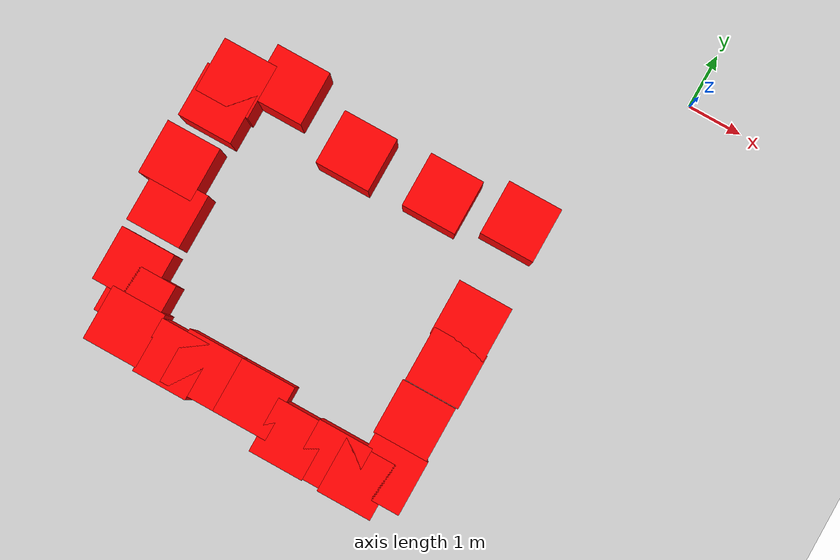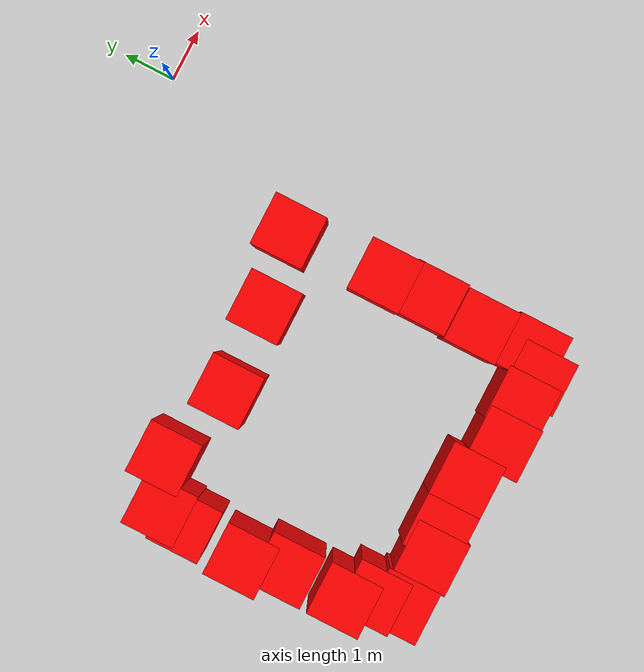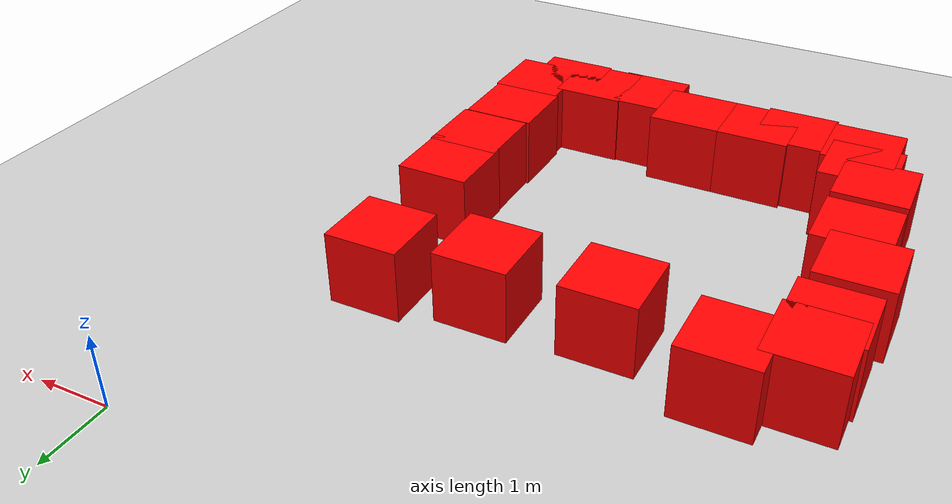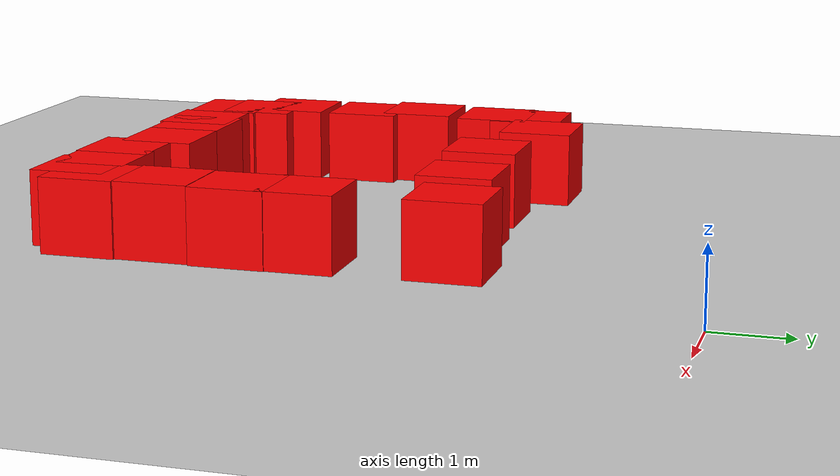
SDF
<sdf version="1.7">
 <world name="default">
  <model name="ground_plane">
   <static>1</static>
   <link name="link">
    <collision name="collision">
     <geometry><plane><normal>0 0 1</normal><size>100 100</size></plane></geometry>
     <surface><friction><ode><mu>100</mu><mu2>50</mu2></ode></friction></surface>
    </collision>
    <visual name="visual">
     <cast_shadows>0</cast_shadows>
     <geometry><plane><normal>0 0 1</normal><size>100 100</size></plane></geometry>
     <material>
      <script><uri>file://media/materials/scripts/gazebo.material</uri><name>Gazebo/Grey</name></script>
     </material>
    </visual>
   </link>
  </model>
  <model name="unit_box_clone_clone_5">
   <link name="link">
    <inertial>
     <mass>1</mass>
     <inertia>
      <ixx>0.166667</ixx>
      <ixy>0</ixy>
      <ixz>0</ixz>
      <iyy>0.166667</iyy>
      <iyz>0</iyz>
      <izz>0.166667</izz>
     </inertia>
    </inertial>
    <visual name="visual">
     <geometry><box><size>1 1 1</size></box></geometry>
     <material>
      <script><name>Gazebo/Grey</name><uri>file://media/materials/scripts/gazebo.material</uri></script>
      <shader type="pixel"><normal_map>__default__</normal_map></shader>
      <ambient>1 0 0 0</ambient>
      <diffuse>0.7 0.7 0.7 1</diffuse>
      <specular>0.01 0.01 0.01 1</specular>
      <emissive>0 0 0 1</emissive>
     </material>
    </visual>
    <collision name="collision">
     <geometry><box><size>1 1 1</size></box></geometry>
     <surface>
      <friction>
       <ode><mu>1</mu><mu2>1</mu2><fdir1>0 0 0</fdir1><slip1>0</slip1><slip2>0</slip2></ode>
       <torsional>
        <coefficient>1</coefficient>
        <patch_radius>0</patch_radius>
        <surface_radius>0</surface_radius>
        <use_patch_radius>1</use_patch_radius>
        <ode><slip>0</slip></ode>
       </torsional>
      </friction>
      <bounce><restitution_coefficient>0</restitution_coefficient><threshold>1e+06</threshold></bounce>
      <contact>
       <collide_without_contact>0</collide_without_contact>
       <collide_without_contact_bitmask>1</collide_without_contact_bitmask>
       <collide_bitmask>1</collide_bitmask>
       <ode>
        <soft_cfm>0</soft_cfm>
        <soft_erp>0.2</soft_erp>
        <kp>1e+13</kp>
        <kd>1</kd>
        <max_vel>0.01</max_vel>
        <min_depth>0</min_depth>
       </ode>
       <bullet>
        <split_impulse>1</split_impulse>
        <split_impulse_penetration_threshold>-0.01</split_impulse_penetration_threshold>
        <soft_cfm>0</soft_cfm>
        <soft_erp>0.2</soft_erp>
        <kp>1e+13</kp>
        <kd>1</kd>
       </bullet>
      </contact>
     </surface>
    </collision>
   </link>
   <static>0</static>
   <pose>-6.06718 -3.15279 0.5 0 -0 0</pose>
  </model>
  <model name="unit_box_clone_clone_6">
   <link name="link">
    <inertial>
     <mass>1</mass>
     <inertia>
      <ixx>0.166667</ixx>
      <ixy>0</ixy>
      <ixz>0</ixz>
      <iyy>0.166667</iyy>
      <iyz>0</iyz>
      <izz>0.166667</izz>
     </inertia>
    </inertial>
    <visual name="visual">
     <geometry><box><size>1 1 1</size></box></geometry>
     <material>
      <script><name>Gazebo/Grey</name><uri>file://media/materials/scripts/gazebo.material</uri></script>
      <shader type="pixel"><normal_map>__default__</normal_map></shader>
      <ambient>1 0 0 0</ambient>
      <diffuse>0.7 0.7 0.7 1</diffuse>
      <specular>0.01 0.01 0.01 1</specular>
      <emissive>0 0 0 1</emissive>
     </material>
    </visual>
    <collision name="collision">
     <geometry><box><size>1 1 1</size></box></geometry>
     <surface>
      <friction>
       <ode><mu>1</mu><mu2>1</mu2><fdir1>0 0 0</fdir1><slip1>0</slip1><slip2>0</slip2></ode>
       <torsional>
        <coefficient>1</coefficient>
        <patch_radius>0</patch_radius>
        <surface_radius>0</surface_radius>
        <use_patch_radius>1</use_patch_radius>
        <ode><slip>0</slip></ode>
       </torsional>
      </friction>
      <bounce><restitution_coefficient>0</restitution_coefficient><threshold>1e+06</threshold></bounce>
      <contact>
       <collide_without_contact>0</collide_without_contact>
       <collide_without_contact_bitmask>1</collide_without_contact_bitmask>
       <collide_bitmask>1</collide_bitmask>
       <ode>
        <soft_cfm>0</soft_cfm>
        <soft_erp>0.2</soft_erp>
        <kp>1e+13</kp>
        <kd>1</kd>
        <max_vel>0.01</max_vel>
        <min_depth>0</min_depth>
       </ode>
       <bullet>
        <split_impulse>1</split_impulse>
        <split_impulse_penetration_threshold>-0.01</split_impulse_penetration_threshold>
        <soft_cfm>0</soft_cfm>
        <soft_erp>0.2</soft_erp>
        <kp>1e+13</kp>
        <kd>1</kd>
       </bullet>
      </contact>
     </surface>
    </collision>
   </link>
   <static>0</static>
   <pose>-1.57543 -3.27153 0.5 0 -0 0</pose>
  </model>
  <model name="unit_box_clone_clone_11">
   <link name="link">
    <inertial>
     <mass>1</mass>
     <inertia>
      <ixx>0.166667</ixx>
      <ixy>0</ixy>
      <ixz>0</ixz>
      <iyy>0.166667</iyy>
      <iyz>0</iyz>
      <izz>0.166667</izz>
     </inertia>
    </inertial>
    <visual name="visual">
     <geometry><box><size>1 1 1</size></box></geometry>
     <material>
      <script><name>Gazebo/Grey</name><uri>file://media/materials/scripts/gazebo.material</uri></script>
      <shader type="pixel"><normal_map>__default__</normal_map></shader>
      <ambient>1 0 0 0</ambient>
      <diffuse>0.7 0.7 0.7 1</diffuse>
      <specular>0.01 0.01 0.01 1</specular>
      <emissive>0 0 0 1</emissive>
     </material>
    </visual>
    <collision name="collision">
     <geometry><box><size>1 1 1</size></box></geometry>
     <surface>
      <friction>
       <ode><mu>1</mu><mu2>1</mu2><fdir1>0 0 0</fdir1><slip1>0</slip1><slip2>0</slip2></ode>
       <torsional>
        <coefficient>1</coefficient>
        <patch_radius>0</patch_radius>
        <surface_radius>0</surface_radius>
        <use_patch_radius>1</use_patch_radius>
        <ode><slip>0</slip></ode>
       </torsional>
      </friction>
      <bounce><restitution_coefficient>0</restitution_coefficient><threshold>1e+06</threshold></bounce>
      <contact>
       <collide_without_contact>0</collide_without_contact>
       <collide_without_contact_bitmask>1</collide_without_contact_bitmask>
       <collide_bitmask>1</collide_bitmask>
       <ode>
        <soft_cfm>0</soft_cfm>
        <soft_erp>0.2</soft_erp>
        <kp>1e+13</kp>
        <kd>1</kd>
        <max_vel>0.01</max_vel>
        <min_depth>0</min_depth>
       </ode>
       <bullet>
        <split_impulse>1</split_impulse>
        <split_impulse_penetration_threshold>-0.01</split_impulse_penetration_threshold>
        <soft_cfm>0</soft_cfm>
        <soft_erp>0.2</soft_erp>
        <kp>1e+13</kp>
        <kd>1</kd>
       </bullet>
      </contact>
     </surface>
    </collision>
   </link>
   <static>0</static>
   <pose>-1.49355 -5.11821 0.5 0 -0 0</pose>
  </model>
  <model name="unit_box_clone_clone_12">
   <link name="link">
    <inertial>
     <mass>1</mass>
     <inertia>
      <ixx>0.166667</ixx>
      <ixy>0</ixy>
      <ixz>0</ixz>
      <iyy>0.166667</iyy>
      <iyz>0</iyz>
      <izz>0.166667</izz>
     </inertia>
    </inertial>
    <visual name="visual">
     <geometry><box><size>1 1 1</size></box></geometry>
     <material>
      <script><name>Gazebo/Grey</name><uri>file://media/materials/scripts/gazebo.material</uri></script>
      <shader type="pixel"><normal_map>__default__</normal_map></shader>
      <ambient>1 0 0 0</ambient>
      <diffuse>0.7 0.7 0.7 1</diffuse>
      <specular>0.01 0.01 0.01 1</specular>
      <emissive>0 0 0 1</emissive>
     </material>
    </visual>
    <collision name="collision">
     <geometry><box><size>1 1 1</size></box></geometry>
     <surface>
      <friction>
       <ode><mu>1</mu><mu2>1</mu2><fdir1>0 0 0</fdir1><slip1>0</slip1><slip2>0</slip2></ode>
       <torsional>
        <coefficient>1</coefficient>
        <patch_radius>0</patch_radius>
        <surface_radius>0</surface_radius>
        <use_patch_radius>1</use_patch_radius>
        <ode><slip>0</slip></ode>
       </torsional>
      </friction>
      <bounce><restitution_coefficient>0</restitution_coefficient><threshold>1e+06</threshold></bounce>
      <contact>
       <collide_without_contact>0</collide_without_contact>
       <collide_without_contact_bitmask>1</collide_without_contact_bitmask>
       <collide_bitmask>1</collide_bitmask>
       <ode>
        <soft_cfm>0</soft_cfm>
        <soft_erp>0.2</soft_erp>
        <kp>1e+13</kp>
        <kd>1</kd>
        <max_vel>0.01</max_vel>
        <min_depth>0</min_depth>
       </ode>
       <bullet>
        <split_impulse>1</split_impulse>
        <split_impulse_penetration_threshold>-0.01</split_impulse_penetration_threshold>
        <soft_cfm>0</soft_cfm>
        <soft_erp>0.2</soft_erp>
        <kp>1e+13</kp>
        <kd>1</kd>
       </bullet>
      </contact>
     </surface>
    </collision>
   </link>
   <static>0</static>
   <pose>-1.51313 -7.01038 0.5 0 -0 0</pose>
  </model>
  <model name="unit_box_clone_clone_13">
   <link name="link">
    <inertial>
     <mass>1</mass>
     <inertia>
      <ixx>0.166667</ixx>
      <ixy>0</ixy>
      <ixz>0</ixz>
      <iyy>0.166667</iyy>
      <iyz>0</iyz>
      <izz>0.166667</izz>
     </inertia>
    </inertial>
    <visual name="visual">
     <geometry><box><size>1 1 1</size></box></geometry>
     <material>
      <script><name>Gazebo/Grey</name><uri>file://media/materials/scripts/gazebo.material</uri></script>
      <shader type="pixel"><normal_map>__default__</normal_map></shader>
      <ambient>1 0 0 0</ambient>
      <diffuse>0.7 0.7 0.7 1</diffuse>
      <specular>0.01 0.01 0.01 1</specular>
      <emissive>0 0 0 1</emissive>
     </material>
    </visual>
    <collision name="collision">
     <geometry><box><size>1 1 1</size></box></geometry>
     <surface>
      <friction>
       <ode><mu>1</mu><mu2>1</mu2><fdir1>0 0 0</fdir1><slip1>0</slip1><slip2>0</slip2></ode>
       <torsional>
        <coefficient>1</coefficient>
        <patch_radius>0</patch_radius>
        <surface_radius>0</surface_radius>
        <use_patch_radius>1</use_patch_radius>
        <ode><slip>0</slip></ode>
       </torsional>
      </friction>
      <bounce><restitution_coefficient>0</restitution_coefficient><threshold>1e+06</threshold></bounce>
      <contact>
       <collide_without_contact>0</collide_without_contact>
       <collide_without_contact_bitmask>1</collide_without_contact_bitmask>
       <collide_bitmask>1</collide_bitmask>
       <ode>
        <soft_cfm>0</soft_cfm>
        <soft_erp>0.2</soft_erp>
        <kp>1e+13</kp>
        <kd>1</kd>
        <max_vel>0.01</max_vel>
        <min_depth>0</min_depth>
       </ode>
       <bullet>
        <split_impulse>1</split_impulse>
        <split_impulse_penetration_threshold>-0.01</split_impulse_penetration_threshold>
        <soft_cfm>0</soft_cfm>
        <soft_erp>0.2</soft_erp>
        <kp>1e+13</kp>
        <kd>1</kd>
       </bullet>
      </contact>
     </surface>
    </collision>
   </link>
   <static>0</static>
   <pose>-2.93788 -3.49827 0.5 0 -0 0</pose>
  </model>
  <model name="unit_box_clone_clone_14">
   <link name="link">
    <inertial>
     <mass>1</mass>
     <inertia>
      <ixx>0.166667</ixx>
      <ixy>0</ixy>
      <ixz>0</ixz>
      <iyy>0.166667</iyy>
      <iyz>0</iyz>
      <izz>0.166667</izz>
     </inertia>
    </inertial>
    <visual name="visual">
     <geometry><box><size>1 1 1</size></box></geometry>
     <material>
      <script><name>Gazebo/Grey</name><uri>file://media/materials/scripts/gazebo.material</uri></script>
      <shader type="pixel"><normal_map>__default__</normal_map></shader>
      <ambient>1 0 0 0</ambient>
      <diffuse>0.7 0.7 0.7 1</diffuse>
      <specular>0.01 0.01 0.01 1</specular>
      <emissive>0 0 0 1</emissive>
     </material>
    </visual>
    <collision name="collision">
     <geometry><box><size>1 1 1</size></box></geometry>
     <surface>
      <friction>
       <ode><mu>1</mu><mu2>1</mu2><fdir1>0 0 0</fdir1><slip1>0</slip1><slip2>0</slip2></ode>
       <torsional>
        <coefficient>1</coefficient>
        <patch_radius>0</patch_radius>
        <surface_radius>0</surface_radius>
        <use_patch_radius>1</use_patch_radius>
        <ode><slip>0</slip></ode>
       </torsional>
      </friction>
      <bounce><restitution_coefficient>0</restitution_coefficient><threshold>1e+06</threshold></bounce>
      <contact>
       <collide_without_contact>0</collide_without_contact>
       <collide_without_contact_bitmask>1</collide_without_contact_bitmask>
       <collide_bitmask>1</collide_bitmask>
       <ode>
        <soft_cfm>0</soft_cfm>
        <soft_erp>0.2</soft_erp>
        <kp>1e+13</kp>
        <kd>1</kd>
        <max_vel>0.01</max_vel>
        <min_depth>0</min_depth>
       </ode>
       <bullet>
        <split_impulse>1</split_impulse>
        <split_impulse_penetration_threshold>-0.01</split_impulse_penetration_threshold>
        <soft_cfm>0</soft_cfm>
        <soft_erp>0.2</soft_erp>
        <kp>1e+13</kp>
        <kd>1</kd>
       </bullet>
      </contact>
     </surface>
    </collision>
   </link>
   <static>0</static>
   <pose>-4.54136 -3.57601 0.5 0 -0 0</pose>
  </model>
  <model name="unit_box_clone_clone_66">
   <link name="link">
    <inertial>
     <mass>1</mass>
     <inertia>
      <ixx>0.166667</ixx>
      <ixy>0</ixy>
      <ixz>0</ixz>
      <iyy>0.166667</iyy>
      <iyz>0</iyz>
      <izz>0.166667</izz>
     </inertia>
    </inertial>
    <visual name="visual">
     <geometry><box><size>1 1 1</size></box></geometry>
     <material>
      <script><name>Gazebo/Grey</name><uri>file://media/materials/scripts/gazebo.material</uri></script>
      <shader type="pixel"><normal_map>__default__</normal_map></shader>
      <ambient>1 0 0 0</ambient>
      <diffuse>0.7 0.7 0.7 1</diffuse>
      <specular>0.01 0.01 0.01 1</specular>
      <emissive>0 0 0 1</emissive>
     </material>
    </visual>
    <collision name="collision">
     <geometry><box><size>1 1 1</size></box></geometry>
     <surface>
      <friction>
       <ode><mu>1</mu><mu2>1</mu2><fdir1>0 0 0</fdir1><slip1>0</slip1><slip2>0</slip2></ode>
       <torsional>
        <coefficient>1</coefficient>
        <patch_radius>0</patch_radius>
        <surface_radius>0</surface_radius>
        <use_patch_radius>1</use_patch_radius>
        <ode><slip>0</slip></ode>
       </torsional>
      </friction>
      <bounce><restitution_coefficient>0</restitution_coefficient><threshold>1e+06</threshold></bounce>
      <contact>
       <collide_without_contact>0</collide_without_contact>
       <collide_without_contact_bitmask>1</collide_without_contact_bitmask>
       <collide_bitmask>1</collide_bitmask>
       <ode>
        <soft_cfm>0</soft_cfm>
        <soft_erp>0.2</soft_erp>
        <kp>1e+13</kp>
        <kd>1</kd>
        <max_vel>0.01</max_vel>
        <min_depth>0</min_depth>
       </ode>
       <bullet>
        <split_impulse>1</split_impulse>
        <split_impulse_penetration_threshold>-0.01</split_impulse_penetration_threshold>
        <soft_cfm>0</soft_cfm>
        <soft_erp>0.2</soft_erp>
        <kp>1e+13</kp>
        <kd>1</kd>
       </bullet>
      </contact>
     </surface>
    </collision>
   </link>
   <static>0</static>
   <pose>-6.89269 -3.49292 0.5 0 -0 0</pose>
  </model>
  <model name="unit_box_clone_clone_67">
   <link name="link">
    <inertial>
     <mass>1</mass>
     <inertia>
      <ixx>0.166667</ixx>
      <ixy>0</ixy>
      <ixz>0</ixz>
      <iyy>0.166667</iyy>
      <iyz>0</iyz>
      <izz>0.166667</izz>
     </inertia>
    </inertial>
    <visual name="visual">
     <geometry><box><size>1 1 1</size></box></geometry>
     <material>
      <script><name>Gazebo/Grey</name><uri>file://media/materials/scripts/gazebo.material</uri></script>
      <shader type="pixel"><normal_map>__default__</normal_map></shader>
      <ambient>1 0 0 0</ambient>
      <diffuse>0.7 0.7 0.7 1</diffuse>
      <specular>0.01 0.01 0.01 1</specular>
      <emissive>0 0 0 1</emissive>
     </material>
    </visual>
    <collision name="collision">
     <geometry><box><size>1 1 1</size></box></geometry>
     <surface>
      <friction>
       <ode><mu>1</mu><mu2>1</mu2><fdir1>0 0 0</fdir1><slip1>0</slip1><slip2>0</slip2></ode>
       <torsional>
        <coefficient>1</coefficient>
        <patch_radius>0</patch_radius>
        <surface_radius>0</surface_radius>
        <use_patch_radius>1</use_patch_radius>
        <ode><slip>0</slip></ode>
       </torsional>
      </friction>
      <bounce><restitution_coefficient>0</restitution_coefficient><threshold>1e+06</threshold></bounce>
      <contact>
       <collide_without_contact>0</collide_without_contact>
       <collide_without_contact_bitmask>1</collide_without_contact_bitmask>
       <collide_bitmask>1</collide_bitmask>
       <ode>
        <soft_cfm>0</soft_cfm>
        <soft_erp>0.2</soft_erp>
        <kp>1e+13</kp>
        <kd>1</kd>
        <max_vel>0.01</max_vel>
        <min_depth>0</min_depth>
       </ode>
       <bullet>
        <split_impulse>1</split_impulse>
        <split_impulse_penetration_threshold>-0.01</split_impulse_penetration_threshold>
        <soft_cfm>0</soft_cfm>
        <soft_erp>0.2</soft_erp>
        <kp>1e+13</kp>
        <kd>1</kd>
       </bullet>
      </contact>
     </surface>
    </collision>
   </link>
   <static>0</static>
   <pose>-6.93666 -3.99629 0.5 0 -0 0</pose>
  </model>
  <model name="unit_box_clone_clone_68">
   <link name="link">
    <inertial>
     <mass>1</mass>
     <inertia>
      <ixx>0.166667</ixx>
      <ixy>0</ixy>
      <ixz>0</ixz>
      <iyy>0.166667</iyy>
      <iyz>0</iyz>
      <izz>0.166667</izz>
     </inertia>
    </inertial>
    <visual name="visual">
     <geometry><box><size>1 1 1</size></box></geometry>
     <material>
      <script><name>Gazebo/Grey</name><uri>file://media/materials/scripts/gazebo.material</uri></script>
      <shader type="pixel"><normal_map>__default__</normal_map></shader>
      <ambient>1 0 0 0</ambient>
      <diffuse>0.7 0.7 0.7 1</diffuse>
      <specular>0.01 0.01 0.01 1</specular>
      <emissive>0 0 0 1</emissive>
     </material>
    </visual>
    <collision name="collision">
     <geometry><box><size>1 1 1</size></box></geometry>
     <surface>
      <friction>
       <ode><mu>1</mu><mu2>1</mu2><fdir1>0 0 0</fdir1><slip1>0</slip1><slip2>0</slip2></ode>
       <torsional>
        <coefficient>1</coefficient>
        <patch_radius>0</patch_radius>
        <surface_radius>0</surface_radius>
        <use_patch_radius>1</use_patch_radius>
        <ode><slip>0</slip></ode>
       </torsional>
      </friction>
      <bounce><restitution_coefficient>0</restitution_coefficient><threshold>1e+06</threshold></bounce>
      <contact>
       <collide_without_contact>0</collide_without_contact>
       <collide_without_contact_bitmask>1</collide_without_contact_bitmask>
       <collide_bitmask>1</collide_bitmask>
       <ode>
        <soft_cfm>0</soft_cfm>
        <soft_erp>0.2</soft_erp>
        <kp>1e+13</kp>
        <kd>1</kd>
        <max_vel>0.01</max_vel>
        <min_depth>0</min_depth>
       </ode>
       <bullet>
        <split_impulse>1</split_impulse>
        <split_impulse_penetration_threshold>-0.01</split_impulse_penetration_threshold>
        <soft_cfm>0</soft_cfm>
        <soft_erp>0.2</soft_erp>
        <kp>1e+13</kp>
        <kd>1</kd>
       </bullet>
      </contact>
     </surface>
    </collision>
   </link>
   <static>0</static>
   <pose>-7.03759 -5.15761 0.5 0 -0 0</pose>
  </model>
  <model name="unit_box_clone_clone_69">
   <link name="link">
    <inertial>
     <mass>1</mass>
     <inertia>
      <ixx>0.166667</ixx>
      <ixy>0</ixy>
      <ixz>0</ixz>
      <iyy>0.166667</iyy>
      <iyz>0</iyz>
      <izz>0.166667</izz>
     </inertia>
    </inertial>
    <visual name="visual">
     <geometry><box><size>1 1 1</size></box></geometry>
     <material>
      <script><name>Gazebo/Grey</name><uri>file://media/materials/scripts/gazebo.material</uri></script>
      <shader type="pixel"><normal_map>__default__</normal_map></shader>
      <ambient>1 0 0 0</ambient>
      <diffuse>0.7 0.7 0.7 1</diffuse>
      <specular>0.01 0.01 0.01 1</specular>
      <emissive>0 0 0 1</emissive>
     </material>
    </visual>
    <collision name="collision">
     <geometry><box><size>1 1 1</size></box></geometry>
     <surface>
      <friction>
       <ode><mu>1</mu><mu2>1</mu2><fdir1>0 0 0</fdir1><slip1>0</slip1><slip2>0</slip2></ode>
       <torsional>
        <coefficient>1</coefficient>
        <patch_radius>0</patch_radius>
        <surface_radius>0</surface_radius>
        <use_patch_radius>1</use_patch_radius>
        <ode><slip>0</slip></ode>
       </torsional>
      </friction>
      <bounce><restitution_coefficient>0</restitution_coefficient><threshold>1e+06</threshold></bounce>
      <contact>
       <collide_without_contact>0</collide_without_contact>
       <collide_without_contact_bitmask>1</collide_without_contact_bitmask>
       <collide_bitmask>1</collide_bitmask>
       <ode>
        <soft_cfm>0</soft_cfm>
        <soft_erp>0.2</soft_erp>
        <kp>1e+13</kp>
        <kd>1</kd>
        <max_vel>0.01</max_vel>
        <min_depth>0</min_depth>
       </ode>
       <bullet>
        <split_impulse>1</split_impulse>
        <split_impulse_penetration_threshold>-0.01</split_impulse_penetration_threshold>
        <soft_cfm>0</soft_cfm>
        <soft_erp>0.2</soft_erp>
        <kp>1e+13</kp>
        <kd>1</kd>
       </bullet>
      </contact>
     </surface>
    </collision>
   </link>
   <static>0</static>
   <pose>-6.819 -5.9351 0.5 0 -0 0</pose>
  </model>
  <model name="unit_box_clone_clone_70">
   <link name="link">
    <inertial>
     <mass>1</mass>
     <inertia>
      <ixx>0.166667</ixx>
      <ixy>0</ixy>
      <ixz>0</ixz>
      <iyy>0.166667</iyy>
      <iyz>0</iyz>
      <izz>0.166667</izz>
     </inertia>
    </inertial>
    <visual name="visual">
     <geometry><box><size>1 1 1</size></box></geometry>
     <material>
      <script><name>Gazebo/Grey</name><uri>file://media/materials/scripts/gazebo.material</uri></script>
      <shader type="pixel"><normal_map>__default__</normal_map></shader>
      <ambient>1 0 0 0</ambient>
      <diffuse>0.7 0.7 0.7 1</diffuse>
      <specular>0.01 0.01 0.01 1</specular>
      <emissive>0 0 0 1</emissive>
     </material>
    </visual>
    <collision name="collision">
     <geometry><box><size>1 1 1</size></box></geometry>
     <surface>
      <friction>
       <ode><mu>1</mu><mu2>1</mu2><fdir1>0 0 0</fdir1><slip1>0</slip1><slip2>0</slip2></ode>
       <torsional>
        <coefficient>1</coefficient>
        <patch_radius>0</patch_radius>
        <surface_radius>0</surface_radius>
        <use_patch_radius>1</use_patch_radius>
        <ode><slip>0</slip></ode>
       </torsional>
      </friction>
      <bounce><restitution_coefficient>0</restitution_coefficient><threshold>1e+06</threshold></bounce>
      <contact>
       <collide_without_contact>0</collide_without_contact>
       <collide_without_contact_bitmask>1</collide_without_contact_bitmask>
       <collide_bitmask>1</collide_bitmask>
       <ode>
        <soft_cfm>0</soft_cfm>
        <soft_erp>0.2</soft_erp>
        <kp>1e+13</kp>
        <kd>1</kd>
        <max_vel>0.01</max_vel>
        <min_depth>0</min_depth>
       </ode>
       <bullet>
        <split_impulse>1</split_impulse>
        <split_impulse_penetration_threshold>-0.01</split_impulse_penetration_threshold>
        <soft_cfm>0</soft_cfm>
        <soft_erp>0.2</soft_erp>
        <kp>1e+13</kp>
        <kd>1</kd>
       </bullet>
      </contact>
     </surface>
    </collision>
   </link>
   <static>0</static>
   <pose>-6.82307 -7.06833 0.5 0 -0 0</pose>
  </model>
  <model name="unit_box_clone_clone_71">
   <link name="link">
    <inertial>
     <mass>1</mass>
     <inertia>
      <ixx>0.166667</ixx>
      <ixy>0</ixy>
      <ixz>0</ixz>
      <iyy>0.166667</iyy>
      <iyz>0</iyz>
      <izz>0.166667</izz>
     </inertia>
    </inertial>
    <visual name="visual">
     <geometry><box><size>1 1 1</size></box></geometry>
     <material>
      <script><name>Gazebo/Grey</name><uri>file://media/materials/scripts/gazebo.material</uri></script>
      <shader type="pixel"><normal_map>__default__</normal_map></shader>
      <ambient>1 0 0 0</ambient>
      <diffuse>0.7 0.7 0.7 1</diffuse>
      <specular>0.01 0.01 0.01 1</specular>
      <emissive>0 0 0 1</emissive>
     </material>
    </visual>
    <collision name="collision">
     <geometry><box><size>1 1 1</size></box></geometry>
     <surface>
      <friction>
       <ode><mu>1</mu><mu2>1</mu2><fdir1>0 0 0</fdir1><slip1>0</slip1><slip2>0</slip2></ode>
       <torsional>
        <coefficient>1</coefficient>
        <patch_radius>0</patch_radius>
        <surface_radius>0</surface_radius>
        <use_patch_radius>1</use_patch_radius>
        <ode><slip>0</slip></ode>
       </torsional>
      </friction>
      <bounce><restitution_coefficient>0</restitution_coefficient><threshold>1e+06</threshold></bounce>
      <contact>
       <collide_without_contact>0</collide_without_contact>
       <collide_without_contact_bitmask>1</collide_without_contact_bitmask>
       <collide_bitmask>1</collide_bitmask>
       <ode>
        <soft_cfm>0</soft_cfm>
        <soft_erp>0.2</soft_erp>
        <kp>1e+13</kp>
        <kd>1</kd>
        <max_vel>0.01</max_vel>
        <min_depth>0</min_depth>
       </ode>
       <bullet>
        <split_impulse>1</split_impulse>
        <split_impulse_penetration_threshold>-0.01</split_impulse_penetration_threshold>
        <soft_cfm>0</soft_cfm>
        <soft_erp>0.2</soft_erp>
        <kp>1e+13</kp>
        <kd>1</kd>
       </bullet>
      </contact>
     </surface>
    </collision>
   </link>
   <static>0</static>
   <pose>-6.54355 -7.50246 0.5 0 -0 0</pose>
  </model>
  <model name="unit_box_clone_clone_72">
   <link name="link">
    <inertial>
     <mass>1</mass>
     <inertia>
      <ixx>0.166667</ixx>
      <ixy>0</ixy>
      <ixz>0</ixz>
      <iyy>0.166667</iyy>
      <iyz>0</iyz>
      <izz>0.166667</izz>
     </inertia>
    </inertial>
    <visual name="visual">
     <geometry><box><size>1 1 1</size></box></geometry>
     <material>
      <script><name>Gazebo/Grey</name><uri>file://media/materials/scripts/gazebo.material</uri></script>
      <shader type="pixel"><normal_map>__default__</normal_map></shader>
      <ambient>1 0 0 0</ambient>
      <diffuse>0.7 0.7 0.7 1</diffuse>
      <specular>0.01 0.01 0.01 1</specular>
      <emissive>0 0 0 1</emissive>
     </material>
    </visual>
    <collision name="collision">
     <geometry><box><size>1 1 1</size></box></geometry>
     <surface>
      <friction>
       <ode><mu>1</mu><mu2>1</mu2><fdir1>0 0 0</fdir1><slip1>0</slip1><slip2>0</slip2></ode>
       <torsional>
        <coefficient>1</coefficient>
        <patch_radius>0</patch_radius>
        <surface_radius>0</surface_radius>
        <use_patch_radius>1</use_patch_radius>
        <ode><slip>0</slip></ode>
       </torsional>
      </friction>
      <bounce><restitution_coefficient>0</restitution_coefficient><threshold>1e+06</threshold></bounce>
      <contact>
       <collide_without_contact>0</collide_without_contact>
       <collide_without_contact_bitmask>1</collide_without_contact_bitmask>
       <collide_bitmask>1</collide_bitmask>
       <ode>
        <soft_cfm>0</soft_cfm>
        <soft_erp>0.2</soft_erp>
        <kp>1e+13</kp>
        <kd>1</kd>
        <max_vel>0.01</max_vel>
        <min_depth>0</min_depth>
       </ode>
       <bullet>
        <split_impulse>1</split_impulse>
        <split_impulse_penetration_threshold>-0.01</split_impulse_penetration_threshold>
        <soft_cfm>0</soft_cfm>
        <soft_erp>0.2</soft_erp>
        <kp>1e+13</kp>
        <kd>1</kd>
       </bullet>
      </contact>
     </surface>
    </collision>
   </link>
   <static>0</static>
   <pose>-6.4614 -8 0.5 0 -0 0</pose>
  </model>
  <model name="unit_box_clone_clone_73">
   <link name="link">
    <inertial>
     <mass>1</mass>
     <inertia>
      <ixx>0.166667</ixx>
      <ixy>0</ixy>
      <ixz>0</ixz>
      <iyy>0.166667</iyy>
      <iyz>0</iyz>
      <izz>0.166667</izz>
     </inertia>
    </inertial>
    <visual name="visual">
     <geometry><box><size>1 1 1</size></box></geometry>
     <material>
      <script><name>Gazebo/Grey</name><uri>file://media/materials/scripts/gazebo.material</uri></script>
      <shader type="pixel"><normal_map>__default__</normal_map></shader>
      <ambient>1 0 0 0</ambient>
      <diffuse>0.7 0.7 0.7 1</diffuse>
      <specular>0.01 0.01 0.01 1</specular>
      <emissive>0 0 0 1</emissive>
     </material>
    </visual>
    <collision name="collision">
     <geometry><box><size>1 1 1</size></box></geometry>
     <surface>
      <friction>
       <ode><mu>1</mu><mu2>1</mu2><fdir1>0 0 0</fdir1><slip1>0</slip1><slip2>0</slip2></ode>
       <torsional>
        <coefficient>1</coefficient>
        <patch_radius>0</patch_radius>
        <surface_radius>0</surface_radius>
        <use_patch_radius>1</use_patch_radius>
        <ode><slip>0</slip></ode>
       </torsional>
      </friction>
      <bounce><restitution_coefficient>0</restitution_coefficient><threshold>1e+06</threshold></bounce>
      <contact>
       <collide_without_contact>0</collide_without_contact>
       <collide_without_contact_bitmask>1</collide_without_contact_bitmask>
       <collide_bitmask>1</collide_bitmask>
       <ode>
        <soft_cfm>0</soft_cfm>
        <soft_erp>0.2</soft_erp>
        <kp>1e+13</kp>
        <kd>1</kd>
        <max_vel>0.01</max_vel>
        <min_depth>0</min_depth>
       </ode>
       <bullet>
        <split_impulse>1</split_impulse>
        <split_impulse_penetration_threshold>-0.01</split_impulse_penetration_threshold>
        <soft_cfm>0</soft_cfm>
        <soft_erp>0.2</soft_erp>
        <kp>1e+13</kp>
        <kd>1</kd>
       </bullet>
      </contact>
     </surface>
    </collision>
   </link>
   <static>0</static>
   <pose>-5.48283 -8.06879 0.5 0 -0 0</pose>
  </model>
  <model name="unit_box_clone_clone_74">
   <link name="link">
    <inertial>
     <mass>1</mass>
     <inertia>
      <ixx>0.166667</ixx>
      <ixy>0</ixy>
      <ixz>0</ixz>
      <iyy>0.166667</iyy>
      <iyz>0</iyz>
      <izz>0.166667</izz>
     </inertia>
    </inertial>
    <visual name="visual">
     <geometry><box><size>1 1 1</size></box></geometry>
     <material>
      <script><name>Gazebo/Grey</name><uri>file://media/materials/scripts/gazebo.material</uri></script>
      <shader type="pixel"><normal_map>__default__</normal_map></shader>
      <ambient>1 0 0 0</ambient>
      <diffuse>0.7 0.7 0.7 1</diffuse>
      <specular>0.01 0.01 0.01 1</specular>
      <emissive>0 0 0 1</emissive>
     </material>
    </visual>
    <collision name="collision">
     <geometry><box><size>1 1 1</size></box></geometry>
     <surface>
      <friction>
       <ode><mu>1</mu><mu2>1</mu2><fdir1>0 0 0</fdir1><slip1>0</slip1><slip2>0</slip2></ode>
       <torsional>
        <coefficient>1</coefficient>
        <patch_radius>0</patch_radius>
        <surface_radius>0</surface_radius>
        <use_patch_radius>1</use_patch_radius>
        <ode><slip>0</slip></ode>
       </torsional>
      </friction>
      <bounce><restitution_coefficient>0</restitution_coefficient><threshold>1e+06</threshold></bounce>
      <contact>
       <collide_without_contact>0</collide_without_contact>
       <collide_without_contact_bitmask>1</collide_without_contact_bitmask>
       <collide_bitmask>1</collide_bitmask>
       <ode>
        <soft_cfm>0</soft_cfm>
        <soft_erp>0.2</soft_erp>
        <kp>1e+13</kp>
        <kd>1</kd>
        <max_vel>0.01</max_vel>
        <min_depth>0</min_depth>
       </ode>
       <bullet>
        <split_impulse>1</split_impulse>
        <split_impulse_penetration_threshold>-0.01</split_impulse_penetration_threshold>
        <soft_cfm>0</soft_cfm>
        <soft_erp>0.2</soft_erp>
        <kp>1e+13</kp>
        <kd>1</kd>
       </bullet>
      </contact>
     </surface>
    </collision>
   </link>
   <static>0</static>
   <pose>-5 -8 0.5 0 -0 0</pose>
  </model>
  <model name="unit_box_clone_clone_75">
   <link name="link">
    <inertial>
     <mass>1</mass>
     <inertia>
      <ixx>0.166667</ixx>
      <ixy>0</ixy>
      <ixz>0</ixz>
      <iyy>0.166667</iyy>
      <iyz>0</iyz>
      <izz>0.166667</izz>
     </inertia>
    </inertial>
    <visual name="visual">
     <geometry><box><size>1 1 1</size></box></geometry>
     <material>
      <script><name>Gazebo/Grey</name><uri>file://media/materials/scripts/gazebo.material</uri></script>
      <shader type="pixel"><normal_map>__default__</normal_map></shader>
      <ambient>1 0 0 0</ambient>
      <diffuse>0.7 0.7 0.7 1</diffuse>
      <specular>0.01 0.01 0.01 1</specular>
      <emissive>0 0 0 1</emissive>
     </material>
    </visual>
    <collision name="collision">
     <geometry><box><size>1 1 1</size></box></geometry>
     <surface>
      <friction>
       <ode><mu>1</mu><mu2>1</mu2><fdir1>0 0 0</fdir1><slip1>0</slip1><slip2>0</slip2></ode>
       <torsional>
        <coefficient>1</coefficient>
        <patch_radius>0</patch_radius>
        <surface_radius>0</surface_radius>
        <use_patch_radius>1</use_patch_radius>
        <ode><slip>0</slip></ode>
       </torsional>
      </friction>
      <bounce><restitution_coefficient>0</restitution_coefficient><threshold>1e+06</threshold></bounce>
      <contact>
       <collide_without_contact>0</collide_without_contact>
       <collide_without_contact_bitmask>1</collide_without_contact_bitmask>
       <collide_bitmask>1</collide_bitmask>
       <ode>
        <soft_cfm>0</soft_cfm>
        <soft_erp>0.2</soft_erp>
        <kp>1e+13</kp>
        <kd>1</kd>
        <max_vel>0.01</max_vel>
        <min_depth>0</min_depth>
       </ode>
       <bullet>
        <split_impulse>1</split_impulse>
        <split_impulse_penetration_threshold>-0.01</split_impulse_penetration_threshold>
        <soft_cfm>0</soft_cfm>
        <soft_erp>0.2</soft_erp>
        <kp>1e+13</kp>
        <kd>1</kd>
       </bullet>
      </contact>
     </surface>
    </collision>
   </link>
   <static>0</static>
   <pose>-4 -8 0.5 0 -0 0</pose>
  </model>
  <model name="unit_box_clone_clone_76">
   <link name="link">
    <inertial>
     <mass>1</mass>
     <inertia>
      <ixx>0.166667</ixx>
      <ixy>0</ixy>
      <ixz>0</ixz>
      <iyy>0.166667</iyy>
      <iyz>0</iyz>
      <izz>0.166667</izz>
     </inertia>
    </inertial>
    <visual name="visual">
     <geometry><box><size>1 1 1</size></box></geometry>
     <material>
      <script><name>Gazebo/Grey</name><uri>file://media/materials/scripts/gazebo.material</uri></script>
      <shader type="pixel"><normal_map>__default__</normal_map></shader>
      <ambient>1 0 0 0</ambient>
      <diffuse>0.7 0.7 0.7 1</diffuse>
      <specular>0.01 0.01 0.01 1</specular>
      <emissive>0 0 0 1</emissive>
     </material>
    </visual>
    <collision name="collision">
     <geometry><box><size>1 1 1</size></box></geometry>
     <surface>
      <friction>
       <ode><mu>1</mu><mu2>1</mu2><fdir1>0 0 0</fdir1><slip1>0</slip1><slip2>0</slip2></ode>
       <torsional>
        <coefficient>1</coefficient>
        <patch_radius>0</patch_radius>
        <surface_radius>0</surface_radius>
        <use_patch_radius>1</use_patch_radius>
        <ode><slip>0</slip></ode>
       </torsional>
      </friction>
      <bounce><restitution_coefficient>0</restitution_coefficient><threshold>1e+06</threshold></bounce>
      <contact>
       <collide_without_contact>0</collide_without_contact>
       <collide_without_contact_bitmask>1</collide_without_contact_bitmask>
       <collide_bitmask>1</collide_bitmask>
       <ode>
        <soft_cfm>0</soft_cfm>
        <soft_erp>0.2</soft_erp>
        <kp>1e+13</kp>
        <kd>1</kd>
        <max_vel>0.01</max_vel>
        <min_depth>0</min_depth>
       </ode>
       <bullet>
        <split_impulse>1</split_impulse>
        <split_impulse_penetration_threshold>-0.01</split_impulse_penetration_threshold>
        <soft_cfm>0</soft_cfm>
        <soft_erp>0.2</soft_erp>
        <kp>1e+13</kp>
        <kd>1</kd>
       </bullet>
      </contact>
     </surface>
    </collision>
   </link>
   <static>0</static>
   <pose>-3.15328 -8.27868 0.5 0 -0 0</pose>
  </model>
  <model name="unit_box_clone_clone_77">
   <link name="link">
    <inertial>
     <mass>1</mass>
     <inertia>
      <ixx>0.166667</ixx>
      <ixy>0</ixy>
      <ixz>0</ixz>
      <iyy>0.166667</iyy>
      <iyz>0</iyz>
      <izz>0.166667</izz>
     </inertia>
    </inertial>
    <visual name="visual">
     <geometry><box><size>1 1 1</size></box></geometry>
     <material>
      <script><name>Gazebo/Grey</name><uri>file://media/materials/scripts/gazebo.material</uri></script>
      <shader type="pixel"><normal_map>__default__</normal_map></shader>
      <ambient>1 0 0 0</ambient>
      <diffuse>0.7 0.7 0.7 1</diffuse>
      <specular>0.01 0.01 0.01 1</specular>
      <emissive>0 0 0 1</emissive>
     </material>
    </visual>
    <collision name="collision">
     <geometry><box><size>1 1 1</size></box></geometry>
     <surface>
      <friction>
       <ode><mu>1</mu><mu2>1</mu2><fdir1>0 0 0</fdir1><slip1>0</slip1><slip2>0</slip2></ode>
       <torsional>
        <coefficient>1</coefficient>
        <patch_radius>0</patch_radius>
        <surface_radius>0</surface_radius>
        <use_patch_radius>1</use_patch_radius>
        <ode><slip>0</slip></ode>
       </torsional>
      </friction>
      <bounce><restitution_coefficient>0</restitution_coefficient><threshold>1e+06</threshold></bounce>
      <contact>
       <collide_without_contact>0</collide_without_contact>
       <collide_without_contact_bitmask>1</collide_without_contact_bitmask>
       <collide_bitmask>1</collide_bitmask>
       <ode>
        <soft_cfm>0</soft_cfm>
        <soft_erp>0.2</soft_erp>
        <kp>1e+13</kp>
        <kd>1</kd>
        <max_vel>0.01</max_vel>
        <min_depth>0</min_depth>
       </ode>
       <bullet>
        <split_impulse>1</split_impulse>
        <split_impulse_penetration_threshold>-0.01</split_impulse_penetration_threshold>
        <soft_cfm>0</soft_cfm>
        <soft_erp>0.2</soft_erp>
        <kp>1e+13</kp>
        <kd>1</kd>
       </bullet>
      </contact>
     </surface>
    </collision>
   </link>
   <static>0</static>
   <pose>-2.38885 -8.25337 0.5 0 -0 0</pose>
  </model>
  <model name="unit_box_clone_clone_78">
   <link name="link">
    <inertial>
     <mass>1</mass>
     <inertia>
      <ixx>0.166667</ixx>
      <ixy>0</ixy>
      <ixz>0</ixz>
      <iyy>0.166667</iyy>
      <iyz>0</iyz>
      <izz>0.166667</izz>
     </inertia>
    </inertial>
    <visual name="visual">
     <geometry><box><size>1 1 1</size></box></geometry>
     <material>
      <script><name>Gazebo/Grey</name><uri>file://media/materials/scripts/gazebo.material</uri></script>
      <shader type="pixel"><normal_map>__default__</normal_map></shader>
      <ambient>1 0 0 0</ambient>
      <diffuse>0.7 0.7 0.7 1</diffuse>
      <specular>0.01 0.01 0.01 1</specular>
      <emissive>0 0 0 1</emissive>
     </material>
    </visual>
    <collision name="collision">
     <geometry><box><size>1 1 1</size></box></geometry>
     <surface>
      <friction>
       <ode><mu>1</mu><mu2>1</mu2><fdir1>0 0 0</fdir1><slip1>0</slip1><slip2>0</slip2></ode>
       <torsional>
        <coefficient>1</coefficient>
        <patch_radius>0</patch_radius>
        <surface_radius>0</surface_radius>
        <use_patch_radius>1</use_patch_radius>
        <ode><slip>0</slip></ode>
       </torsional>
      </friction>
      <bounce><restitution_coefficient>0</restitution_coefficient><threshold>1e+06</threshold></bounce>
      <contact>
       <collide_without_contact>0</collide_without_contact>
       <collide_without_contact_bitmask>1</collide_without_contact_bitmask>
       <collide_bitmask>1</collide_bitmask>
       <ode>
        <soft_cfm>0</soft_cfm>
        <soft_erp>0.2</soft_erp>
        <kp>1e+13</kp>
        <kd>1</kd>
        <max_vel>0.01</max_vel>
        <min_depth>0</min_depth>
       </ode>
       <bullet>
        <split_impulse>1</split_impulse>
        <split_impulse_penetration_threshold>-0.01</split_impulse_penetration_threshold>
        <soft_cfm>0</soft_cfm>
        <soft_erp>0.2</soft_erp>
        <kp>1e+13</kp>
        <kd>1</kd>
       </bullet>
      </contact>
     </surface>
    </collision>
   </link>
   <static>0</static>
   <pose>-1.85364 -8.30159 0.5 0 -0 0</pose>
  </model>
  <model name="unit_box_clone_clone_79">
   <link name="link">
    <inertial>
     <mass>1</mass>
     <inertia>
      <ixx>0.166667</ixx>
      <ixy>0</ixy>
      <ixz>0</ixz>
      <iyy>0.166667</iyy>
      <iyz>0</iyz>
      <izz>0.166667</izz>
     </inertia>
    </inertial>
    <visual name="visual">
     <geometry><box><size>1 1 1</size></box></geometry>
     <material>
      <script><name>Gazebo/Grey</name><uri>file://media/materials/scripts/gazebo.material</uri></script>
      <shader type="pixel"><normal_map>__default__</normal_map></shader>
      <ambient>1 0 0 0</ambient>
      <diffuse>0.7 0.7 0.7 1</diffuse>
      <specular>0.01 0.01 0.01 1</specular>
      <emissive>0 0 0 1</emissive>
     </material>
    </visual>
    <collision name="collision">
     <geometry><box><size>1 1 1</size></box></geometry>
     <surface>
      <friction>
       <ode><mu>1</mu><mu2>1</mu2><fdir1>0 0 0</fdir1><slip1>0</slip1><slip2>0</slip2></ode>
       <torsional>
        <coefficient>1</coefficient>
        <patch_radius>0</patch_radius>
        <surface_radius>0</surface_radius>
        <use_patch_radius>1</use_patch_radius>
        <ode><slip>0</slip></ode>
       </torsional>
      </friction>
      <bounce><restitution_coefficient>0</restitution_coefficient><threshold>1e+06</threshold></bounce>
      <contact>
       <collide_without_contact>0</collide_without_contact>
       <collide_without_contact_bitmask>1</collide_without_contact_bitmask>
       <collide_bitmask>1</collide_bitmask>
       <ode>
        <soft_cfm>0</soft_cfm>
        <soft_erp>0.2</soft_erp>
        <kp>1e+13</kp>
        <kd>1</kd>
        <max_vel>0.01</max_vel>
        <min_depth>0</min_depth>
       </ode>
       <bullet>
        <split_impulse>1</split_impulse>
        <split_impulse_penetration_threshold>-0.01</split_impulse_penetration_threshold>
        <soft_cfm>0</soft_cfm>
        <soft_erp>0.2</soft_erp>
        <kp>1e+13</kp>
        <kd>1</kd>
       </bullet>
      </contact>
     </surface>
    </collision>
   </link>
   <static>0</static>
   <pose>-1.48105 -8 0.5 0 -0 0</pose>
  </model>
  <model name="unit_box_clone_clone_80">
   <link name="link">
    <inertial>
     <mass>1</mass>
     <inertia>
      <ixx>0.166667</ixx>
      <ixy>0</ixy>
      <ixz>0</ixz>
      <iyy>0.166667</iyy>
      <iyz>0</iyz>
      <izz>0.166667</izz>
     </inertia>
    </inertial>
    <visual name="visual">
     <geometry><box><size>1 1 1</size></box></geometry>
     <material>
      <script><name>Gazebo/Grey</name><uri>file://media/materials/scripts/gazebo.material</uri></script>
      <shader type="pixel"><normal_map>__default__</normal_map></shader>
      <ambient>1 0 0 0</ambient>
      <diffuse>0.7 0.7 0.7 1</diffuse>
      <specular>0.01 0.01 0.01 1</specular>
      <emissive>0 0 0 1</emissive>
     </material>
    </visual>
    <collision name="collision">
     <geometry><box><size>1 1 1</size></box></geometry>
     <surface>
      <friction>
       <ode><mu>1</mu><mu2>1</mu2><fdir1>0 0 0</fdir1><slip1>0</slip1><slip2>0</slip2></ode>
       <torsional>
        <coefficient>1</coefficient>
        <patch_radius>0</patch_radius>
        <surface_radius>0</surface_radius>
        <use_patch_radius>1</use_patch_radius>
        <ode><slip>0</slip></ode>
       </torsional>
      </friction>
      <bounce><restitution_coefficient>0</restitution_coefficient><threshold>1e+06</threshold></bounce>
      <contact>
       <collide_without_contact>0</collide_without_contact>
       <collide_without_contact_bitmask>1</collide_without_contact_bitmask>
       <collide_bitmask>1</collide_bitmask>
       <ode>
        <soft_cfm>0</soft_cfm>
        <soft_erp>0.2</soft_erp>
        <kp>1e+13</kp>
        <kd>1</kd>
        <max_vel>0.01</max_vel>
        <min_depth>0</min_depth>
       </ode>
       <bullet>
        <split_impulse>1</split_impulse>
        <split_impulse_penetration_threshold>-0.01</split_impulse_penetration_threshold>
        <soft_cfm>0</soft_cfm>
        <soft_erp>0.2</soft_erp>
        <kp>1e+13</kp>
        <kd>1</kd>
       </bullet>
      </contact>
     </surface>
    </collision>
   </link>
   <static>0</static>
   <pose>-1.47695 -6 0.5 0 -0 0</pose>
  </model>
 </world>
</sdf>
